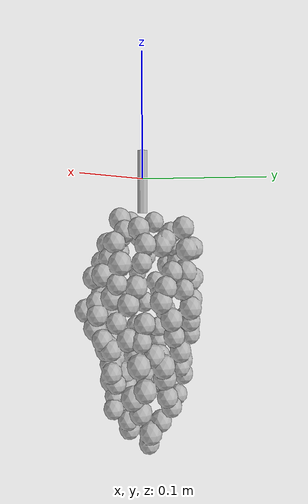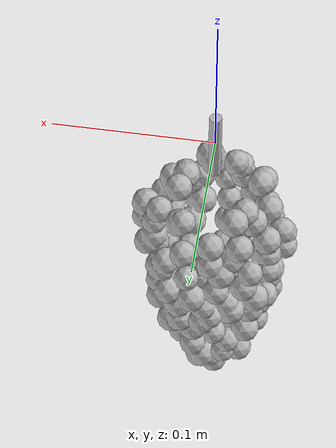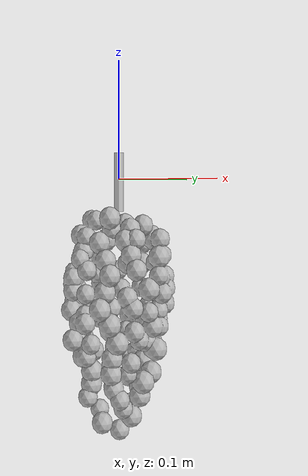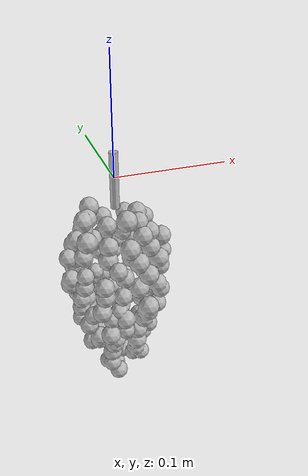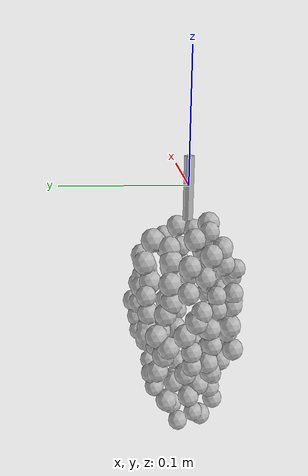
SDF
<?xml version='1.0' encoding='utf-8'?>
<sdf version="1.6">
  <model name="grape_bunch_purple">
    <link name="bunch">
      <gravity>false</gravity>
      <inertial>
        <pose>-0.000760067 -6.94022e-05 -0.124166 0 0 0</pose>
        <mass>0.15</mass>
        <inertia>
          <ixx>0.000653244</ixx>
          <iyy>0.000652711</iyy>
          <izz>0.000275475</izz>
          <ixy>0</ixy>
          <ixz>0</ixz>
          <iyz>0</iyz>
        </inertia>
      </inertial>
      <collision name="berries">
        <pose>-0.000760067 -6.94022e-05 -0.124166 0 0 0</pose>
        <geometry>
          <box>
            <size>0.10487 0.105073 0.203025</size>
          </box>
        </geometry>
      </collision>
      <visual name="berries">
        <geometry>
          <mesh>
            <uri>model://grape_bunch_purple/meshes/berries.obj</uri>
          </mesh>
        </geometry>
      </visual>
      <visual name="stem">
        <geometry>
          <mesh>
            <uri>model://grape_bunch_purple/meshes/stem.obj</uri>
          </mesh>
        </geometry>
      </visual>
    </link>
  </model>
</sdf>
